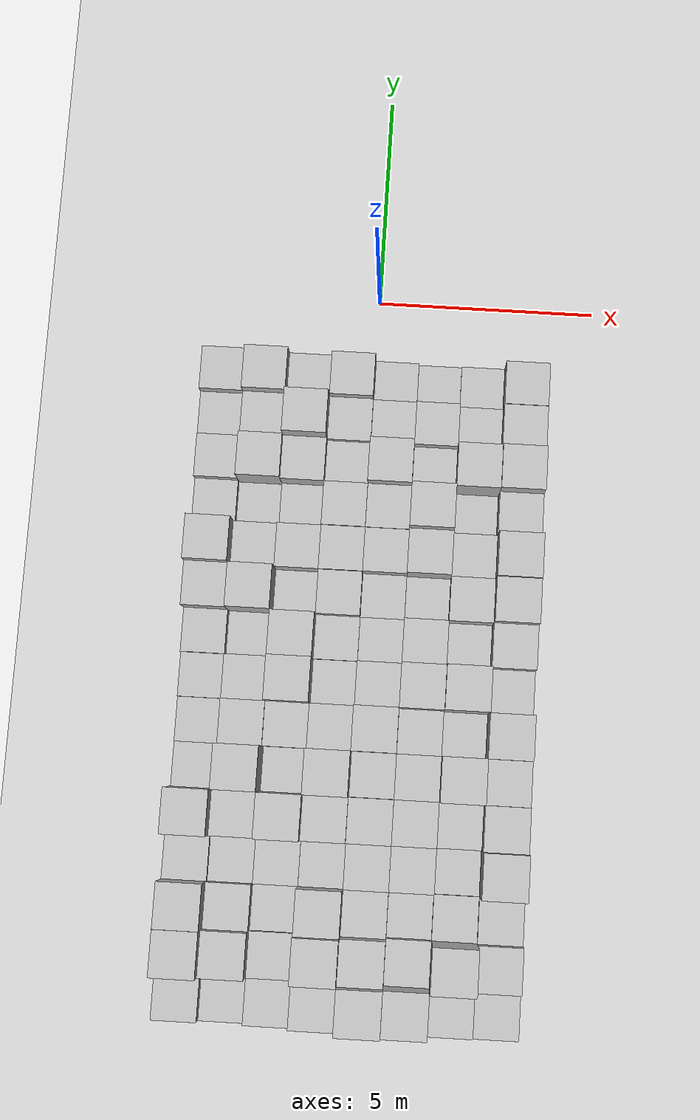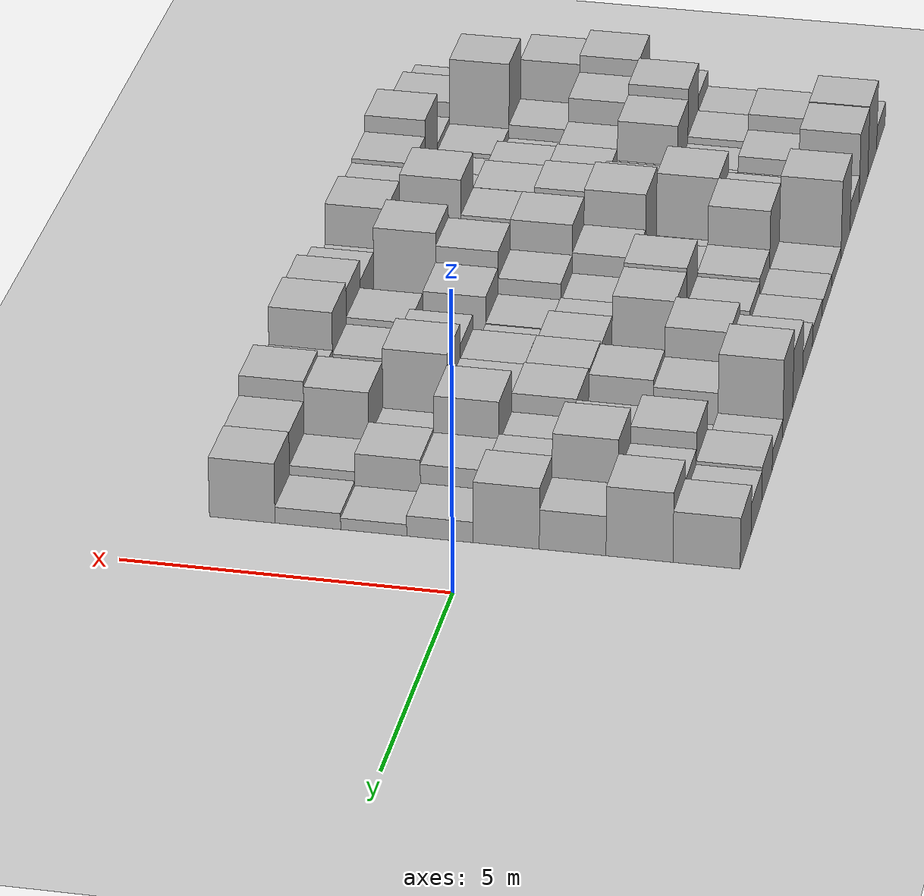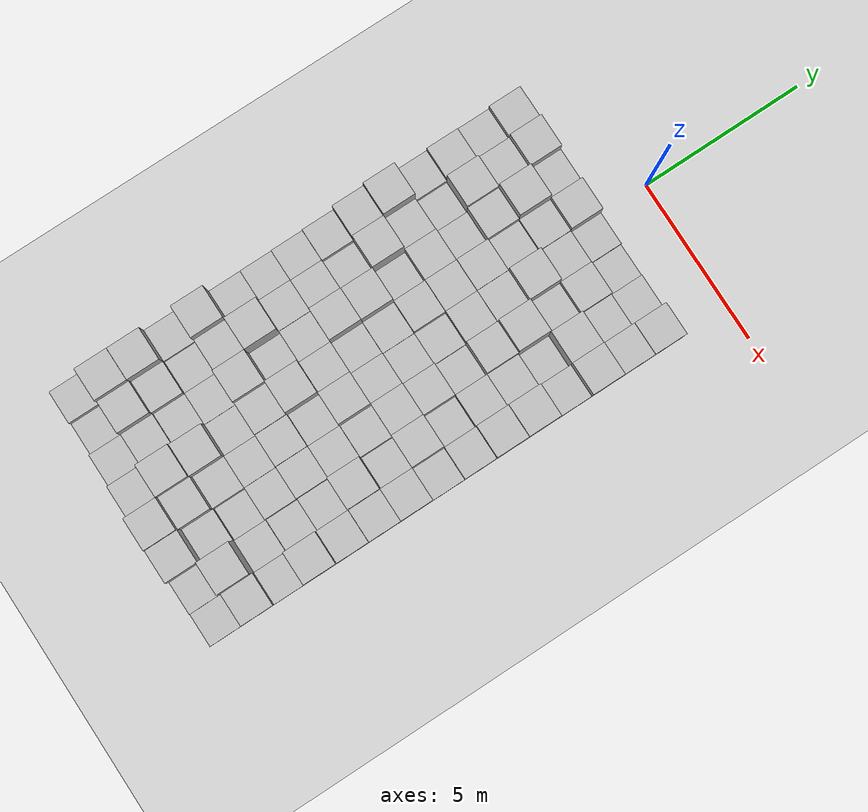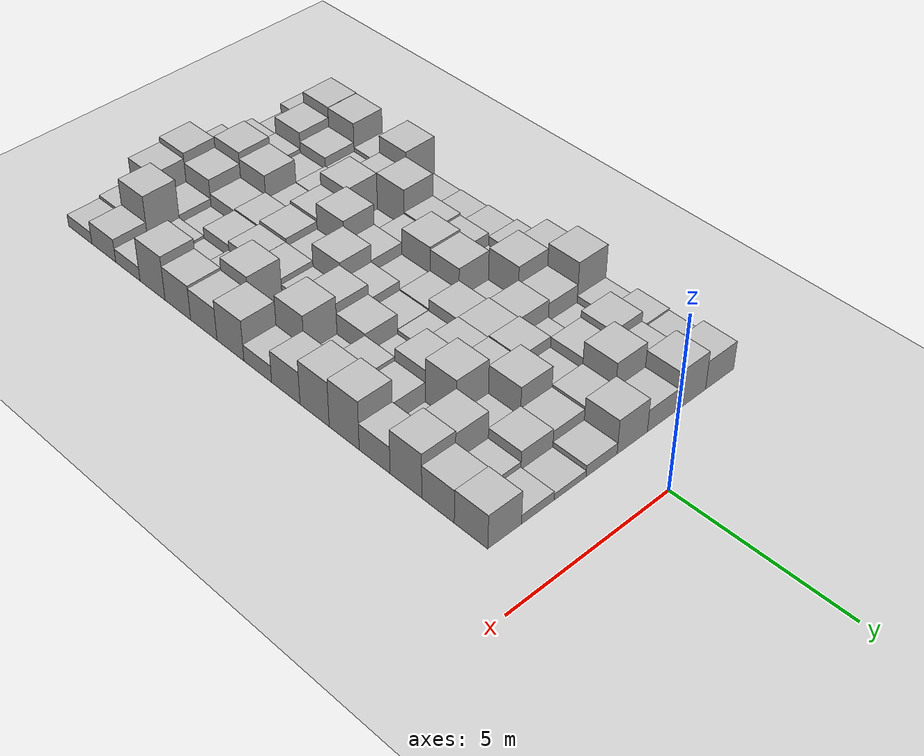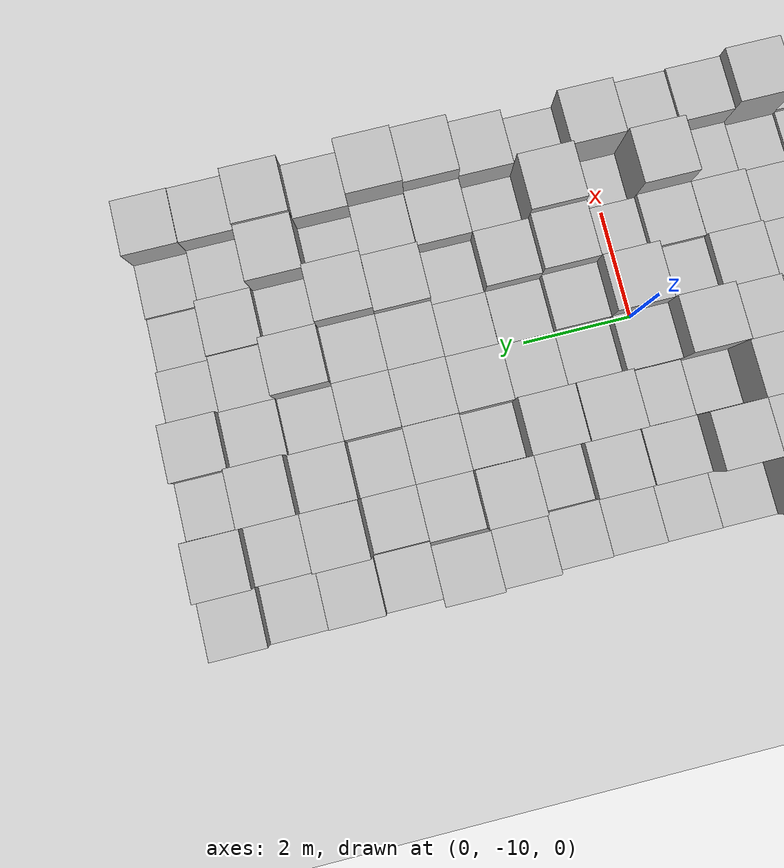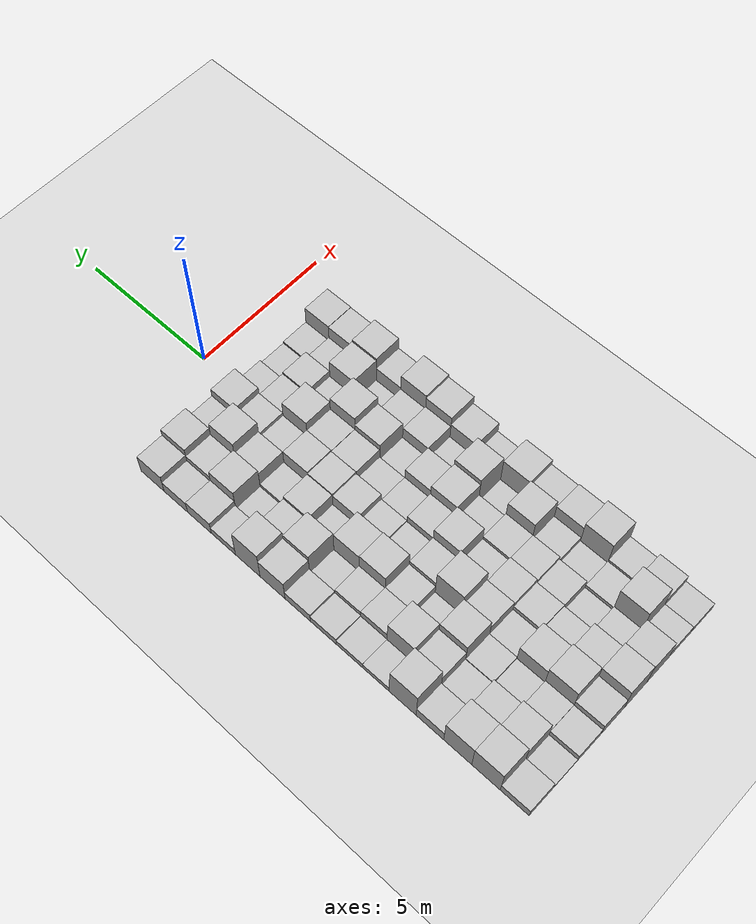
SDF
<?xml version="1.0" ?>
<sdf version="1.6">
  <world name="default">
  <gravity>0 0 -9.81</gravity>
  <physics name="ode_400iters" type="ode" default="true">
    <!-- the combination of 2 params below provides real time factor speed for simulation -->
    <!-- max_real_time_factor = real_time_update_rate * max_step_size -->
    <!-- min_real_time_factor depends only from max_step_size -->
    <real_time_update_rate>111.2</real_time_update_rate>
    <max_step_size>0.009 </max_step_size>
      <ode>
        <solver>
          <type>quick</type>
          <iters>400</iters>
        </solver>
      </ode>
    </physics>
    <include>
      <uri>model://ground_plane</uri>
    </include>
    <include>
      <uri>model://sun</uri>
    </include>
        <include>
		<uri>model://strirus_gazebo/maps/Generated_terrain</uri>
      <name>Terrain</name>
      <pose>0 -2.0 0 0 0 0</pose>
    </include>
  </world>
</sdf>
